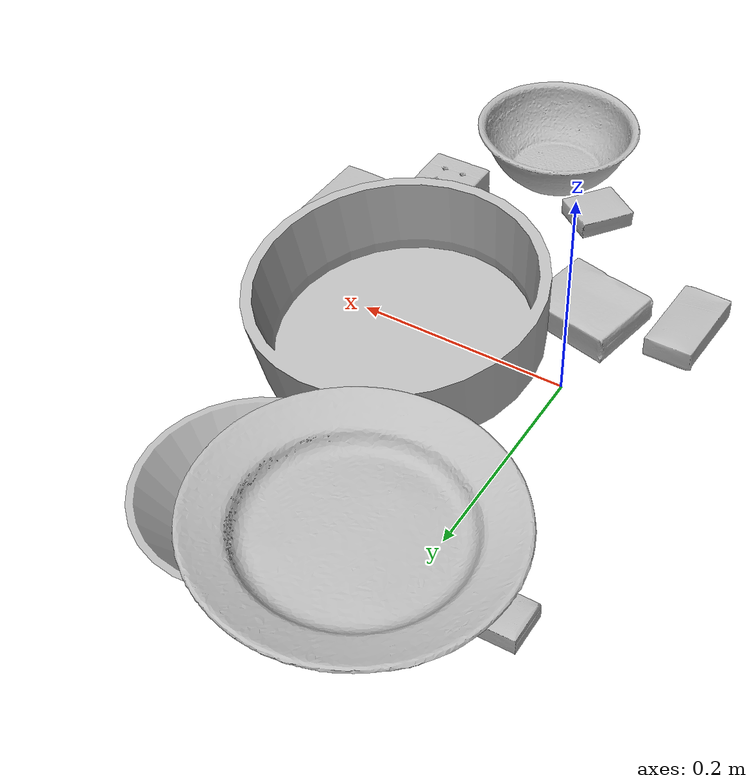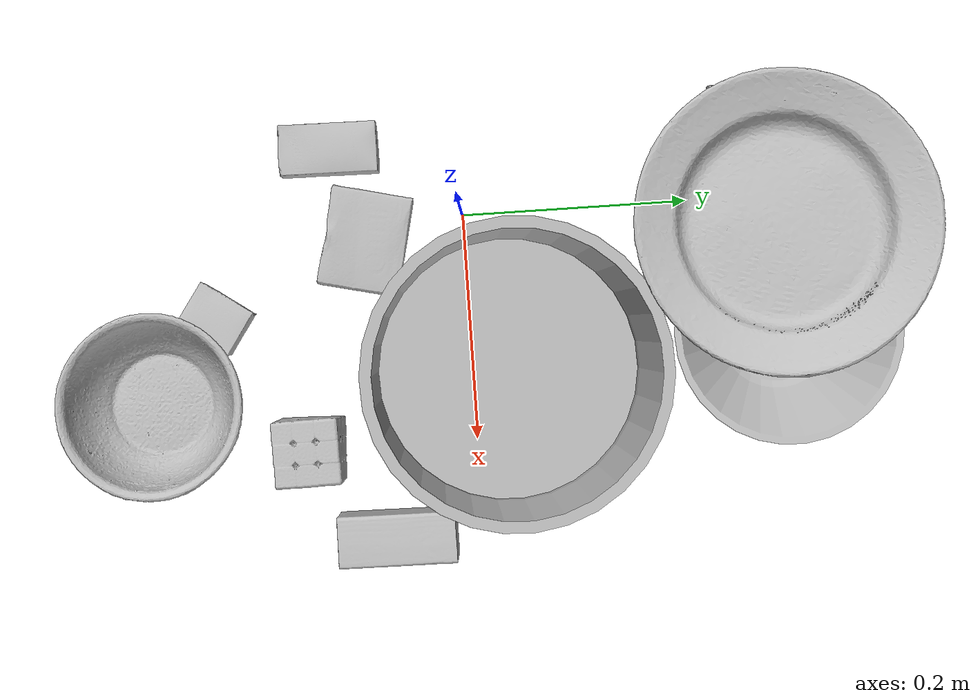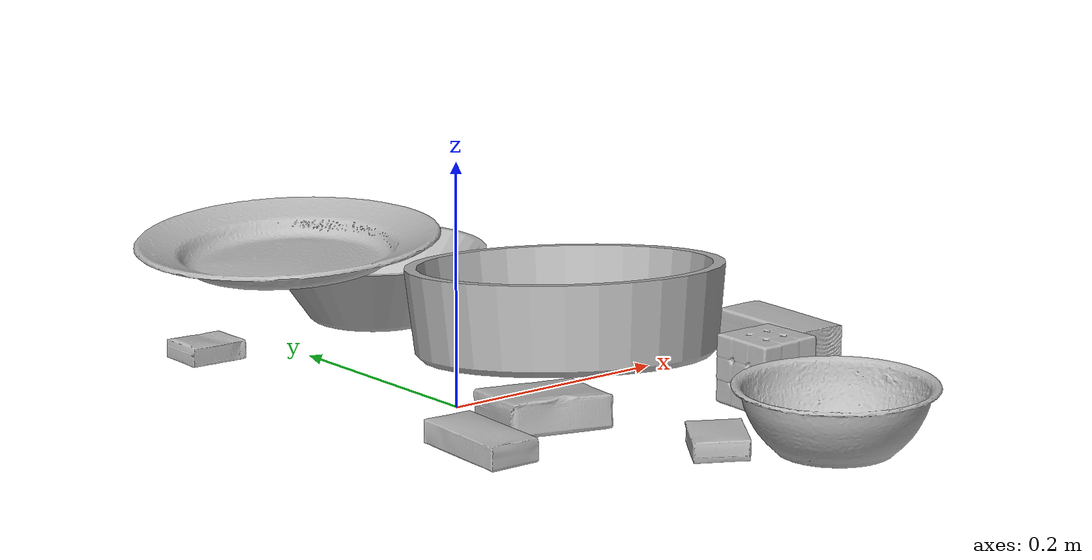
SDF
<sdf version="1.4">
  <world name="default">
    <light name="light1" type="point">
      <pose>0 0 1 0 0 0</pose>
      <diffuse>3 3 3 1</diffuse>
      <specular>3 3 3 1</specular>
    </light>
    <light name="light2" type="point">
      <pose>0 0.5 2 0 0 0</pose>
      <diffuse>1 1 1 1</diffuse>
      <specular>1 1 1 1</specular>
    </light>
    <light name="light3" type="point">
      <pose>0 0.5 2 0 0 0</pose>
      <diffuse>3 3 3 1</diffuse>
      <specular>3 3 3 1</specular>
    </light>
    <scene>
      <ambient>0.7 0.7 0.7</ambient>
    </scene>
    <model name="box1">
      <link name="link_box1">
        <collision name="default">
          <geometry>
            <mesh>
              <uri>model://cracker_box/collision_meshes/collision.obj</uri>
              <scale>0.25 0.25 0.25</scale>
            </mesh>
          </geometry>
          <surface>
            <friction>
              <ode>
                <mu>0.5</mu>
                <mu2>0.5</mu2>
              </ode>
            </friction>
          <contact>
        <ode>
            <max_vel>0</max_vel>
            <min_depth>0.0001</min_depth>
            <kp>1e8</kp>
        </ode>
    </contact></surface>
        </collision>
        <visual name="default">
          <geometry>
            <mesh>
              <uri>model://cracker_box/visual_meshes/visual.dae</uri>
              <scale>0.25 0.25 0.25</scale>
            </mesh>
          </geometry>
        </visual>
        <inertial>
          <mass>0.050503700971603394</mass>
          <pose>0.0002366037224419415 6.358561950037256e-05 -0.0004257383698131889 -0.00031620760376762643 -0.011106489600284392 0.0025467959332018085</pose>
          <inertia>
            <ixx>8.02868e-06</ixx>
            <iyy>1.3256925e-05</iyy>
            <izz>1.8918852e-05</izz>
            <ixy>0</ixy>
            <ixz>0</ixz>
            <iyz>0</iyz>
          </inertia>
        </inertial>
      </link>
      <pose>-0.07308554649353027 0.24535945057868958 0.009120448492467403 -0.011788331385167187 -0.007367372741395229 -3.141543708760496</pose>
    </model>
    <model name="box11">
      <link name="link_box11">
        <collision name="default">
          <geometry>
            <mesh>
              <uri>model://rubiks_cube/collision_meshes/collision.obj</uri>
              <scale>1.0 1.0 1.0</scale>
            </mesh>
          </geometry>
          <surface>
            <friction>
              <ode>
                <mu>0.5</mu>
                <mu2>0.5</mu2>
              </ode>
            </friction>
          <contact>
        <ode>
            <max_vel>0</max_vel>
            <min_depth>0.0001</min_depth>
            <kp>1e8</kp>
        </ode>
    </contact></surface>
        </collision>
        <visual name="default">
          <geometry>
            <mesh>
              <uri>model://rubiks_cube/visual_meshes/visual.dae</uri>
              <scale>1.0 1.0 1.0</scale>
            </mesh>
          </geometry>
        </visual>
        <inertial>
          <mass>0.15071694552898407</mass>
          <pose>2.6721043468569405e-05 5.2569666877388954e-05 -7.264316082000732e-06 -0.05467297119259296 -0.09814009057422186 -0.034453654418704155</pose>
          <inertia>
            <ixx>8.328124e-05</ixx>
            <iyy>8.2892846e-05</iyy>
            <izz>8.397135e-05</izz>
            <ixy>0</ixy>
            <ixz>0</ixz>
            <iyz>0</iyz>
          </inertia>
        </inertial>
      </link>
      <pose>0.19895212352275848 -0.14581365883350372 0.028678977862000465 -2.6540148740576604e-06 -7.851265003854878e-07 -3.138098888262932</pose>
    </model>
    <model name="box2">
      <link name="link_box2">
        <collision name="default">
          <geometry>
            <mesh>
              <uri>model://gelatin_box/collision_meshes/collision.obj</uri>
              <scale>1.0 1.0 1.0</scale>
            </mesh>
          </geometry>
          <surface>
            <friction>
              <ode>
                <mu>0.5</mu>
                <mu2>0.5</mu2>
              </ode>
            </friction>
          <contact>
        <ode>
            <max_vel>0</max_vel>
            <min_depth>0.0001</min_depth>
            <kp>1e8</kp>
        </ode>
    </contact></surface>
        </collision>
        <visual name="default">
          <geometry>
            <mesh>
              <uri>model://gelatin_box/visual_meshes/visual.dae</uri>
              <scale>1.0 1.0 1.0</scale>
            </mesh>
          </geometry>
        </visual>
        <inertial>
          <mass>0.24173277616500854</mass>
          <pose>0.00043196187471039593 0.00011156872642459348 -0.0003640321083366871 -0.001050371835386973 -0.004755817297158009 0.016440553881960234</pose>
          <inertia>
            <ixx>0.00017064363</ixx>
            <iyy>0.00012188985</iyy>
            <izz>0.00025975762</izz>
            <ixy>0</ixy>
            <ixz>0</ixz>
            <iyz>0</iyz>
          </inertia>
        </inertial>
      </link>
      <pose>0.01824340969324112 -0.0865727961063385 0.016417531296610832 -0.012906400266626266 -0.0649340024796685 -1.804999334537573</pose>
    </model>
    <model name="box21">
      <link name="link_box21">
        <collision name="default">
          <geometry>
            <mesh>
              <uri>model://wood_block/collision_meshes/collision.obj</uri>
              <scale>0.5 0.5 0.5</scale>
            </mesh>
          </geometry>
          <surface>
            <friction>
              <ode>
                <mu>0.5</mu>
                <mu2>0.5</mu2>
              </ode>
            </friction>
          <contact>
        <ode>
            <max_vel>0</max_vel>
            <min_depth>0.0001</min_depth>
            <kp>1e8</kp>
        </ode>
    </contact></surface>
        </collision>
        <visual name="default">
          <geometry>
            <mesh>
              <uri>model://wood_block/visual_meshes/visual.dae</uri>
              <scale>0.5 0.5 0.5</scale>
            </mesh>
          </geometry>
        </visual>
        <inertial>
          <mass>0.16252566874027252</mass>
          <pose>-2.906657982748584e-06 -0.000285404734313488 0.00013204291462898254 -0.05220975528683206 -0.005192696037335319 -0.006861378846526553</pose>
          <inertia>
            <ixx>5.437098e-05</ixx>
            <iyy>0.00017175796</iyy>
            <izz>0.00017111548</izz>
            <ixy>0</ixy>
            <ixz>0</ixz>
            <iyz>0</iyz>
          </inertia>
        </inertial>
      </link>
      <pose>0.27964872121810913 -0.07433285564184189 0.02262926660478115 -0.005208615042572912 0.005718740529657633 -1.5822898443213251</pose>
    </model>
    <model name="box3">
      <link name="link_box3">
        <collision name="default">
          <geometry>
            <mesh>
              <uri>model://pudding_box/collision_meshes/collision.obj</uri>
              <scale>0.5 0.5 0.5</scale>
            </mesh>
          </geometry>
          <surface>
            <friction>
              <ode>
                <mu>0.5</mu>
                <mu2>0.5</mu2>
              </ode>
            </friction>
          <contact>
        <ode>
            <max_vel>0</max_vel>
            <min_depth>0.0001</min_depth>
            <kp>1e8</kp>
        </ode>
    </contact></surface>
        </collision>
        <visual name="default">
          <geometry>
            <mesh>
              <uri>model://pudding_box/visual_meshes/visual.dae</uri>
              <scale>0.5 0.5 0.5</scale>
            </mesh>
          </geometry>
        </visual>
        <inertial>
          <mass>0.05576644837856293</mass>
          <pose>0.00024474109522998333 0.0004033942532259971 -0.0002594413817860186 0.005213101792545572 -0.006603798718575614 0.020079825159656634</pose>
          <inertia>
            <ixx>1.5760277e-05</ixx>
            <iyy>1.0603625e-05</iyy>
            <izz>2.3274164e-05</izz>
            <ixy>0</ixy>
            <ixz>0</ixz>
            <iyz>0</iyz>
          </inertia>
        </inertial>
      </link>
      <pose>0.07787083834409714 -0.22452481091022491 0.009862899780273438 0.022348434198915773 -0.011391746157547058 -0.5968382685245665</pose>
    </model>
    <model name="box31">
      <link name="link_box31">
        <collision name="default">
          <geometry>
            <mesh>
              <uri>model://sugar_box/collision_meshes/collision.obj</uri>
              <scale>0.5 0.5 0.5</scale>
            </mesh>
          </geometry>
          <surface>
            <friction>
              <ode>
                <mu>0.5</mu>
                <mu2>0.5</mu2>
              </ode>
            </friction>
          <contact>
        <ode>
            <max_vel>0</max_vel>
            <min_depth>0.0001</min_depth>
            <kp>1e8</kp>
        </ode>
    </contact></surface>
        </collision>
        <visual name="default">
          <geometry>
            <mesh>
              <uri>model://sugar_box/visual_meshes/visual.dae</uri>
              <scale>0.5 0.5 0.5</scale>
            </mesh>
          </geometry>
        </visual>
        <inertial>
          <mass>0.1100529357790947</mass>
          <pose>0.0005171863595023751 1.924554817378521e-05 -0.00018182402709499002 -0.00040462641680988955 0.001050663522315131 0.0026153787888612426</pose>
          <inertia>
            <ixx>2.2923945e-05</ixx>
            <iyy>7.409492e-05</iyy>
            <izz>8.870046e-05</izz>
            <ixy>0</ixy>
            <ixz>0</ixz>
            <iyz>0</iyz>
          </inertia>
        </inertial>
      </link>
      <pose>-0.06573815643787384 -0.11478105187416077 0.011399301700294018 0.0007753271584986641 -0.023432358536452386 1.5488225484353266</pose>
    </model>
    <model name="plate1">
      <link name="link_plate1">
        <collision name="default">
          <geometry>
            <mesh>
              <uri>model://pan_tefal/collision_meshes/collision.obj</uri>
              <scale>1.0 1.0 1.0</scale>
            </mesh>
          </geometry>
          <surface>
            <friction>
              <ode>
                <mu>0.5</mu>
                <mu2>0.5</mu2>
              </ode>
            </friction>
          <contact>
        <ode>
            <max_vel>0</max_vel>
            <min_depth>0.0001</min_depth>
            <kp>1e8</kp>
        </ode>
    </contact></surface>
        </collision>
        <visual name="default">
          <geometry>
            <mesh>
              <uri>model://pan_tefal/visual_meshes/visual.dae</uri>
              <scale>1.0 1.0 1.0</scale>
            </mesh>
          </geometry>
        </visual>
        <inertial>
          <mass>1.207520604133606</mass>
          <pose>-0.00018002177239395678 3.2792409911053255e-05 -0.00851493701338768 0.0008190288495961148 -0.0003301407263612178 -0.3318541272495768</pose>
          <inertia>
            <ixx>0.008335457</ixx>
            <iyy>0.008389196</iyy>
            <izz>0.015343971</izz>
            <ixy>0</ixy>
            <ixz>0</ixz>
            <iyz>0</iyz>
          </inertia>
        </inertial>
      </link>
      <pose>0.14136552810668945 0.03568132594227791 0.05047069489955902 0.07061860764516026 -0.09100517506138626 -2.681372255292886</pose>
    </model>
    <model name="bowl1">
      <link name="link_bowl1">
        <collision name="default">
          <geometry>
            <mesh>
              <uri>model://bowl/collision_meshes/collision.obj</uri>
              <scale>1.0 1.0 1.0</scale>
            </mesh>
          </geometry>
          <surface>
            <friction>
              <ode>
                <mu>0.5</mu>
                <mu2>0.5</mu2>
              </ode>
            </friction>
          <contact>
        <ode>
            <max_vel>0</max_vel>
            <min_depth>0.0001</min_depth>
            <kp>1e8</kp>
        </ode>
    </contact></surface>
        </collision>
        <visual name="default">
          <geometry>
            <mesh>
              <uri>model://bowl/visual_meshes/visual.dae</uri>
              <scale>1.0 1.0 1.0</scale>
            </mesh>
          </geometry>
        </visual>
        <inertial>
          <mass>0.09256309270858765</mass>
          <pose>0.00020445158588699996 -0.001030202372930944 -0.0008042642730288208 -0.015764073075752352 0.01454679669645375 0.7140412125775129</pose>
          <inertia>
            <ixx>0.00021262471</ixx>
            <iyy>0.00020787389</iyy>
            <izz>0.00035770793</izz>
            <ixy>0</ixy>
            <ixz>0</ixz>
            <iyz>0</iyz>
          </inertia>
        </inertial>
      </link>
      <pose>0.15062347054481506 -0.2780205309391022 0.027779998257756233 3.261729097674977e-08 2.1610312811196637e-08 2.0189199691115207</pose>
    </model>
    <model name="plate2">
      <link name="link_plate2">
        <collision name="default">
          <geometry>
            <mesh>
              <uri>model://plate/collision_meshes/collision.obj</uri>
              <scale>1.0 1.0 1.0</scale>
            </mesh>
          </geometry>
          <surface>
            <friction>
              <ode>
                <mu>0.5</mu>
                <mu2>0.5</mu2>
              </ode>
            </friction>
          <contact>
        <ode>
            <max_vel>0</max_vel>
            <min_depth>0.0001</min_depth>
            <kp>1e8</kp>
        </ode>
    </contact></surface>
        </collision>
        <visual name="default">
          <geometry>
            <mesh>
              <uri>model://plate/visual_meshes/visual.dae</uri>
              <scale>1.0 1.0 1.0</scale>
            </mesh>
          </geometry>
        </visual>
        <inertial>
          <mass>0.22150008380413055</mass>
          <pose>-0.0006044640904292464 0.0002782581141218543 -0.0010561984963715076 0.0022187839711676756 -0.00322547471274247 0.4526095389577293</pose>
          <inertia>
            <ixx>0.0010361817</ixx>
            <iyy>0.0010262709</iyy>
            <izz>0.0020266173</izz>
            <ixy>0</ixy>
            <ixz>0</ixz>
            <iyz>0</iyz>
          </inertia>
        </inertial>
      </link>
      <pose>0.030942633748054504 0.27323117852211 0.07277023047208786 0.047438373545844695 -0.005252786222508736 -1.4205612380759076</pose>
    </model>
    <model name="bowl2">
      <link name="link_bowl2">
        <collision name="default">
          <geometry>
            <mesh>
              <uri>model://bowl_a/collision_meshes/collision.obj</uri>
              <scale>1.0 1.0 1.0</scale>
            </mesh>
          </geometry>
          <surface>
            <friction>
              <ode>
                <mu>0.5</mu>
                <mu2>0.5</mu2>
              </ode>
            </friction>
          <contact>
        <ode>
            <max_vel>0</max_vel>
            <min_depth>0.0001</min_depth>
            <kp>1e8</kp>
        </ode>
    </contact></surface>
        </collision>
        <visual name="default">
          <geometry>
            <mesh>
              <uri>model://bowl_a/visual_meshes/visual.dae</uri>
              <scale>1.0 1.0 1.0</scale>
            </mesh>
          </geometry>
        </visual>
        <inertial>
          <mass>0.4869906008243561</mass>
          <pose>0.0002786735713016242 4.731232547783293e-05 -0.001376529224216938 -0.0009805388639875933 -0.0010938169956893674 -0.19123322132810686</pose>
          <inertia>
            <ixx>0.0013864844</ixx>
            <iyy>0.0013949967</iyy>
            <izz>0.0024659163</izz>
            <ixy>0</ixy>
            <ixz>0</ixz>
            <iyz>0</iyz>
          </inertia>
        </inertial>
      </link>
      <pose>0.12079212814569473 0.27165326476097107 0.03038313239812851 1.470271819398505e-06 1.2914559224541536e-05 -2.4341493117658324</pose>
    </model>
  <physics type="ode">
      <max_contacts>50</max_contacts>
      <ode>
        <solver>
          <type>quick</type>
          <iters>75</iters>
        </solver>
        <constraints>
          <contact_max_correcting_vel>0</contact_max_correcting_vel>
          <contact_surface_layer>0</contact_surface_layer>
        </constraints>
      </ode>
    </physics></world>
</sdf>
